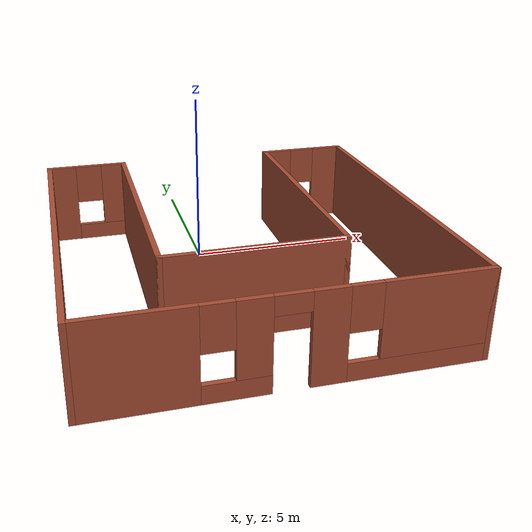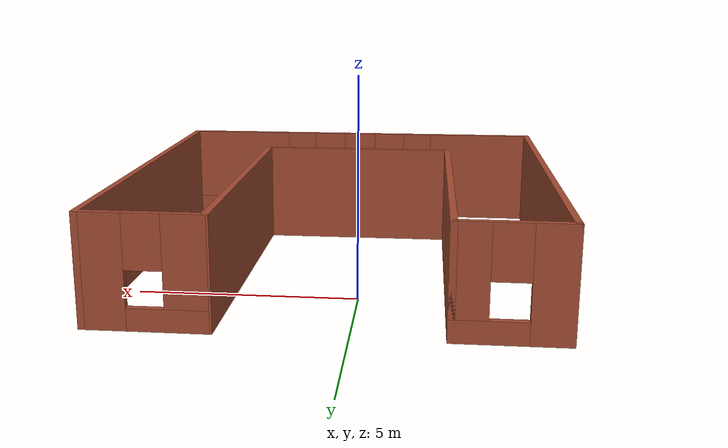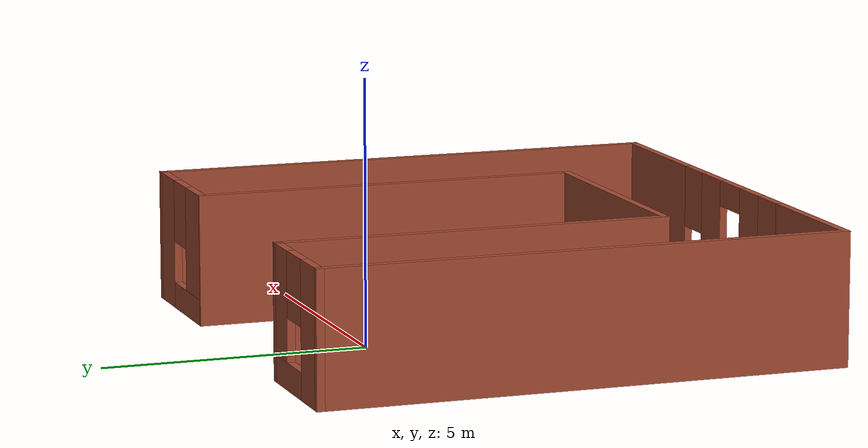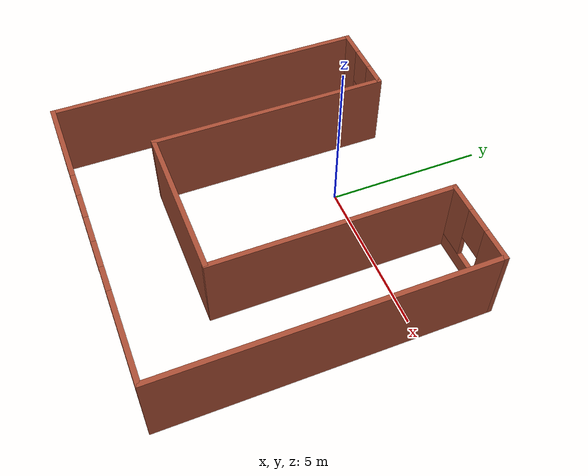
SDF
<?xml version='1.0'?>
<sdf version='1.6'>
  <model name='mybuilding'>
    <pose frame=''>0.559556 -2.63855 0 0 -0 0</pose>
    <link name='Wall_0'>
      <pose frame=''>-3.75 4.925 0 0 -0 0</pose>
      <visual name='Wall_0_Visual_0'>
        <pose frame=''>-0.804568 0 1.25 0 -0 0</pose>
        <geometry>
          <box>
            <size>0.890864 0.15 2.5</size>
          </box>
        </geometry>
        <material>
          <script>
            <uri>file://media/materials/scripts/gazebo.material</uri>
            <name>Gazebo/Bricks</name>
          </script>
          <ambient>1 1 1 1</ambient>
        </material>
        <meta>
          <layer>0</layer>
        </meta>
      </visual>
      <collision name='Wall_0_Collision_0'>
        <geometry>
          <box>
            <size>0.890864 0.15 2.5</size>
          </box>
        </geometry>
        <pose frame=''>-0.804568 0 1.25 0 -0 0</pose>
      </collision>
      <visual name='Wall_0_Visual_1'>
        <pose frame=''>0.445432 0 0.25 0 -0 0</pose>
        <geometry>
          <box>
            <size>1.60914 0.15 0.5</size>
          </box>
        </geometry>
        <material>
          <script>
            <uri>file://media/materials/scripts/gazebo.material</uri>
            <name>Gazebo/Bricks</name>
          </script>
          <ambient>1 1 1 1</ambient>
        </material>
        <meta>
          <layer>0</layer>
        </meta>
      </visual>
      <collision name='Wall_0_Collision_1'>
        <geometry>
          <box>
            <size>1.60914 0.15 0.5</size>
          </box>
        </geometry>
        <pose frame=''>0.445432 0 0.25 0 -0 0</pose>
      </collision>
      <visual name='Wall_0_Visual_2'>
        <pose frame=''>0.845432 0 1.5 0 -0 0</pose>
        <geometry>
          <box>
            <size>0.809136 0.15 2</size>
          </box>
        </geometry>
        <material>
          <script>
            <uri>file://media/materials/scripts/gazebo.material</uri>
            <name>Gazebo/Bricks</name>
          </script>
          <ambient>1 1 1 1</ambient>
        </material>
        <meta>
          <layer>0</layer>
        </meta>
      </visual>
      <collision name='Wall_0_Collision_2'>
        <geometry>
          <box>
            <size>0.809136 0.15 2</size>
          </box>
        </geometry>
        <pose frame=''>0.845432 0 1.5 0 -0 0</pose>
      </collision>
      <visual name='Wall_0_Visual_3'>
        <pose frame=''>0.040864 0 1.9 0 -0 0</pose>
        <geometry>
          <box>
            <size>0.8 0.15 1.2</size>
          </box>
        </geometry>
        <material>
          <script>
            <uri>file://media/materials/scripts/gazebo.material</uri>
            <name>Gazebo/Bricks</name>
          </script>
          <ambient>1 1 1 1</ambient>
        </material>
        <meta>
          <layer>0</layer>
        </meta>
      </visual>
      <collision name='Wall_0_Collision_3'>
        <geometry>
          <box>
            <size>0.8 0.15 1.2</size>
          </box>
        </geometry>
        <pose frame=''>0.040864 0 1.9 0 -0 0</pose>
      </collision>
    </link>
    <link name='Wall_10'>
      <pose frame=''>3.625 4.925 0 0 -0 3.14159</pose>
      <visual name='Wall_10_Visual_0'>
        <pose frame=''>-0.861434 0 1.25 0 -0 0</pose>
        <geometry>
          <box>
            <size>1.02713 0.15 2.5</size>
          </box>
        </geometry>
        <material>
          <script>
            <uri>file://media/materials/scripts/gazebo.material</uri>
            <name>Gazebo/Bricks</name>
          </script>
          <ambient>1 1 1 1</ambient>
        </material>
        <meta>
          <layer>0</layer>
        </meta>
      </visual>
      <collision name='Wall_10_Collision_0'>
        <geometry>
          <box>
            <size>1.02713 0.15 2.5</size>
          </box>
        </geometry>
        <pose frame=''>-0.861434 0 1.25 0 -0 0</pose>
      </collision>
      <visual name='Wall_10_Visual_1'>
        <pose frame=''>0.513566 0 0.25 0 -0 0</pose>
        <geometry>
          <box>
            <size>1.72287 0.15 0.5</size>
          </box>
        </geometry>
        <material>
          <script>
            <uri>file://media/materials/scripts/gazebo.material</uri>
            <name>Gazebo/Bricks</name>
          </script>
          <ambient>1 1 1 1</ambient>
        </material>
        <meta>
          <layer>0</layer>
        </meta>
      </visual>
      <collision name='Wall_10_Collision_1'>
        <geometry>
          <box>
            <size>1.72287 0.15 0.5</size>
          </box>
        </geometry>
        <pose frame=''>0.513566 0 0.25 0 -0 0</pose>
      </collision>
      <visual name='Wall_10_Visual_2'>
        <pose frame=''>0.913566 0 1.5 0 -0 0</pose>
        <geometry>
          <box>
            <size>0.922868 0.15 2</size>
          </box>
        </geometry>
        <material>
          <script>
            <uri>file://media/materials/scripts/gazebo.material</uri>
            <name>Gazebo/Bricks</name>
          </script>
          <ambient>1 1 1 1</ambient>
        </material>
        <meta>
          <layer>0</layer>
        </meta>
      </visual>
      <collision name='Wall_10_Collision_2'>
        <geometry>
          <box>
            <size>0.922868 0.15 2</size>
          </box>
        </geometry>
        <pose frame=''>0.913566 0 1.5 0 -0 0</pose>
      </collision>
      <visual name='Wall_10_Visual_3'>
        <pose frame=''>0.052132 0 1.9 0 -0 0</pose>
        <geometry>
          <box>
            <size>0.8 0.15 1.2</size>
          </box>
        </geometry>
        <material>
          <script>
            <uri>file://media/materials/scripts/gazebo.material</uri>
            <name>Gazebo/Bricks</name>
          </script>
          <ambient>1 1 1 1</ambient>
        </material>
        <meta>
          <layer>0</layer>
        </meta>
      </visual>
      <collision name='Wall_10_Collision_3'>
        <geometry>
          <box>
            <size>0.8 0.15 1.2</size>
          </box>
        </geometry>
        <pose frame=''>0.052132 0 1.9 0 -0 0</pose>
      </collision>
    </link>
    <link name='Wall_12'>
      <collision name='Wall_12_Collision'>
        <geometry>
          <box>
            <size>7.5 0.15 2.5</size>
          </box>
        </geometry>
        <pose frame=''>0 0 1.25 0 -0 0</pose>
      </collision>
      <visual name='Wall_12_Visual'>
        <pose frame=''>0 0 1.25 0 -0 0</pose>
        <geometry>
          <box>
            <size>7.5 0.15 2.5</size>
          </box>
        </geometry>
        <material>
          <script>
            <uri>file://media/materials/scripts/gazebo.material</uri>
            <name>Gazebo/Bricks</name>
          </script>
          <ambient>1 1 1 1</ambient>
        </material>
        <meta>
          <layer>0</layer>
        </meta>
      </visual>
      <pose frame=''>-2.575 1.25 0 0 0 -1.5708</pose>
    </link>
    <link name='Wall_14'>
      <collision name='Wall_14_Collision'>
        <geometry>
          <box>
            <size>5 0.15 2.5</size>
          </box>
        </geometry>
        <pose frame=''>0 0 1.25 0 -0 0</pose>
      </collision>
      <visual name='Wall_14_Visual'>
        <pose frame=''>0 0 1.25 0 -0 0</pose>
        <geometry>
          <box>
            <size>5 0.15 2.5</size>
          </box>
        </geometry>
        <material>
          <script>
            <uri>file://media/materials/scripts/gazebo.material</uri>
            <name>Gazebo/Bricks</name>
          </script>
          <ambient>1 1 1 1</ambient>
        </material>
        <meta>
          <layer>0</layer>
        </meta>
      </visual>
      <pose frame=''>-0.15 -2.425 0 0 -0 0</pose>
    </link>
    <link name='Wall_16'>
      <collision name='Wall_16_Collision'>
        <geometry>
          <box>
            <size>7.5 0.15 2.5</size>
          </box>
        </geometry>
        <pose frame=''>0 0 1.25 0 -0 0</pose>
      </collision>
      <visual name='Wall_16_Visual'>
        <pose frame=''>0 0 1.25 0 -0 0</pose>
        <geometry>
          <box>
            <size>7.5 0.15 2.5</size>
          </box>
        </geometry>
        <material>
          <script>
            <uri>file://media/materials/scripts/gazebo.material</uri>
            <name>Gazebo/Bricks</name>
          </script>
          <ambient>1 1 1 1</ambient>
        </material>
        <meta>
          <layer>0</layer>
        </meta>
      </visual>
      <pose frame=''>2.275 1.25 0 0 -0 1.5708</pose>
    </link>
    <link name='Wall_4'>
      <collision name='Wall_4_Collision'>
        <geometry>
          <box>
            <size>10 0.15 2.5</size>
          </box>
        </geometry>
        <pose frame=''>0 0 1.25 0 -0 0</pose>
      </collision>
      <visual name='Wall_4_Visual'>
        <pose frame=''>0 0 1.25 0 -0 0</pose>
        <geometry>
          <box>
            <size>10 0.15 2.5</size>
          </box>
        </geometry>
        <material>
          <script>
            <uri>file://media/materials/scripts/gazebo.material</uri>
            <name>Gazebo/Bricks</name>
          </script>
          <ambient>1 1 1 1</ambient>
        </material>
        <meta>
          <layer>0</layer>
        </meta>
      </visual>
      <pose frame=''>-4.925 0 0 0 0 -1.5708</pose>
    </link>
    <link name='Wall_6'>
      <pose frame=''>0 -4.925 0 0 -0 0</pose>
      <visual name='Wall_6_Visual_0'>
        <pose frame=''>-3.56341 0 1.25 0 -0 0</pose>
        <geometry>
          <box>
            <size>2.87319 0.15 2.5</size>
          </box>
        </geometry>
        <material>
          <script>
            <uri>file://media/materials/scripts/gazebo.material</uri>
            <name>Gazebo/Bricks</name>
          </script>
          <ambient>1 1 1 1</ambient>
        </material>
        <meta>
          <layer>0</layer>
        </meta>
      </visual>
      <collision name='Wall_6_Collision_0'>
        <geometry>
          <box>
            <size>2.87319 0.15 2.5</size>
          </box>
        </geometry>
        <pose frame=''>-3.56341 0 1.25 0 -0 0</pose>
      </collision>
      <visual name='Wall_6_Visual_1'>
        <pose frame=''>0.867117 0 1.25 0 -0 0</pose>
        <geometry>
          <box>
            <size>0.88959 0.15 2.5</size>
          </box>
        </geometry>
        <material>
          <script>
            <uri>file://media/materials/scripts/gazebo.material</uri>
            <name>Gazebo/Bricks</name>
          </script>
          <ambient>1 1 1 1</ambient>
        </material>
        <meta>
          <layer>0</layer>
        </meta>
      </visual>
      <collision name='Wall_6_Collision_1'>
        <geometry>
          <box>
            <size>0.88959 0.15 2.5</size>
          </box>
        </geometry>
        <pose frame=''>0.867117 0 1.25 0 -0 0</pose>
      </collision>
      <visual name='Wall_6_Visual_2'>
        <pose frame=''>-1.30225 0 0.25 0 -0 0</pose>
        <geometry>
          <box>
            <size>1.64913 0.15 0.5</size>
          </box>
        </geometry>
        <material>
          <script>
            <uri>file://media/materials/scripts/gazebo.material</uri>
            <name>Gazebo/Bricks</name>
          </script>
          <ambient>1 1 1 1</ambient>
        </material>
        <meta>
          <layer>0</layer>
        </meta>
      </visual>
      <collision name='Wall_6_Collision_2'>
        <geometry>
          <box>
            <size>1.64913 0.15 0.5</size>
          </box>
        </geometry>
        <pose frame=''>-1.30225 0 0.25 0 -0 0</pose>
      </collision>
      <visual name='Wall_6_Visual_3'>
        <pose frame=''>3.15596 0 0.25 0 -0 0</pose>
        <geometry>
          <box>
            <size>3.68809 0.15 0.5</size>
          </box>
        </geometry>
        <material>
          <script>
            <uri>file://media/materials/scripts/gazebo.material</uri>
            <name>Gazebo/Bricks</name>
          </script>
          <ambient>1 1 1 1</ambient>
        </material>
        <meta>
          <layer>0</layer>
        </meta>
      </visual>
      <collision name='Wall_6_Collision_3'>
        <geometry>
          <box>
            <size>3.68809 0.15 0.5</size>
          </box>
        </geometry>
        <pose frame=''>3.15596 0 0.25 0 -0 0</pose>
      </collision>
      <visual name='Wall_6_Visual_4'>
        <pose frame=''>-0.902245 0 1.5 0 -0 0</pose>
        <geometry>
          <box>
            <size>0.849134 0.15 2</size>
          </box>
        </geometry>
        <material>
          <script>
            <uri>file://media/materials/scripts/gazebo.material</uri>
            <name>Gazebo/Bricks</name>
          </script>
          <ambient>1 1 1 1</ambient>
        </material>
        <meta>
          <layer>0</layer>
        </meta>
      </visual>
      <collision name='Wall_6_Collision_4'>
        <geometry>
          <box>
            <size>0.849134 0.15 2</size>
          </box>
        </geometry>
        <pose frame=''>-0.902245 0 1.5 0 -0 0</pose>
      </collision>
      <visual name='Wall_6_Visual_5'>
        <pose frame=''>-0.902245 0 1.5 0 -0 0</pose>
        <geometry>
          <box>
            <size>0.849134 0.15 2</size>
          </box>
        </geometry>
        <material>
          <script>
            <uri>file://media/materials/scripts/gazebo.material</uri>
            <name>Gazebo/Bricks</name>
          </script>
          <ambient>1 1 1 1</ambient>
        </material>
        <meta>
          <layer>0</layer>
        </meta>
      </visual>
      <collision name='Wall_6_Collision_5'>
        <geometry>
          <box>
            <size>0.849134 0.15 2</size>
          </box>
        </geometry>
        <pose frame=''>-0.902245 0 1.5 0 -0 0</pose>
      </collision>
      <visual name='Wall_6_Visual_6'>
        <pose frame=''>3.55596 0 1.5 0 -0 0</pose>
        <geometry>
          <box>
            <size>2.88809 0.15 2</size>
          </box>
        </geometry>
        <material>
          <script>
            <uri>file://media/materials/scripts/gazebo.material</uri>
            <name>Gazebo/Bricks</name>
          </script>
          <ambient>1 1 1 1</ambient>
        </material>
        <meta>
          <layer>0</layer>
        </meta>
      </visual>
      <collision name='Wall_6_Collision_6'>
        <geometry>
          <box>
            <size>2.88809 0.15 2</size>
          </box>
        </geometry>
        <pose frame=''>3.55596 0 1.5 0 -0 0</pose>
      </collision>
      <visual name='Wall_6_Visual_7'>
        <pose frame=''>-1.72681 0 1.9 0 -0 0</pose>
        <geometry>
          <box>
            <size>0.8 0.15 1.2</size>
          </box>
        </geometry>
        <material>
          <script>
            <uri>file://media/materials/scripts/gazebo.material</uri>
            <name>Gazebo/Bricks</name>
          </script>
          <ambient>1 1 1 1</ambient>
        </material>
        <meta>
          <layer>0</layer>
        </meta>
      </visual>
      <collision name='Wall_6_Collision_7'>
        <geometry>
          <box>
            <size>0.8 0.15 1.2</size>
          </box>
        </geometry>
        <pose frame=''>-1.72681 0 1.9 0 -0 0</pose>
      </collision>
      <visual name='Wall_6_Visual_8'>
        <pose frame=''>1.71191 0 1.9 0 -0 0</pose>
        <geometry>
          <box>
            <size>0.8 0.15 1.2</size>
          </box>
        </geometry>
        <material>
          <script>
            <uri>file://media/materials/scripts/gazebo.material</uri>
            <name>Gazebo/Bricks</name>
          </script>
          <ambient>1 1 1 1</ambient>
        </material>
        <meta>
          <layer>0</layer>
        </meta>
      </visual>
      <collision name='Wall_6_Collision_8'>
        <geometry>
          <box>
            <size>0.8 0.15 1.2</size>
          </box>
        </geometry>
        <pose frame=''>1.71191 0 1.9 0 -0 0</pose>
      </collision>
      <visual name='Wall_6_Visual_9'>
        <pose frame=''>-0.027678 0 2.25 0 -0 0</pose>
        <geometry>
          <box>
            <size>0.9 0.15 0.5</size>
          </box>
        </geometry>
        <material>
          <script>
            <uri>file://media/materials/scripts/gazebo.material</uri>
            <name>Gazebo/Bricks</name>
          </script>
          <ambient>1 1 1 1</ambient>
        </material>
        <meta>
          <layer>0</layer>
        </meta>
      </visual>
      <collision name='Wall_6_Collision_9'>
        <geometry>
          <box>
            <size>0.9 0.15 0.5</size>
          </box>
        </geometry>
        <pose frame=''>-0.027678 0 2.25 0 -0 0</pose>
      </collision>
      <visual name='Wall_6_Visual_10'>
        <pose frame=''>-0.027678 0 2.25 0 -0 0</pose>
        <geometry>
          <box>
            <size>0.9 0.15 0.5</size>
          </box>
        </geometry>
        <material>
          <script>
            <uri>file://media/materials/scripts/gazebo.material</uri>
            <name>Gazebo/Bricks</name>
          </script>
          <ambient>1 1 1 1</ambient>
        </material>
        <meta>
          <layer>0</layer>
        </meta>
      </visual>
      <collision name='Wall_6_Collision_10'>
        <geometry>
          <box>
            <size>0.9 0.15 0.5</size>
          </box>
        </geometry>
        <pose frame=''>-0.027678 0 2.25 0 -0 0</pose>
      </collision>
    </link>
    <link name='Wall_8'>
      <collision name='Wall_8_Collision'>
        <geometry>
          <box>
            <size>10 0.15 2.5</size>
          </box>
        </geometry>
        <pose frame=''>0 0 1.25 0 -0 0</pose>
      </collision>
      <visual name='Wall_8_Visual'>
        <pose frame=''>0 0 1.25 0 -0 0</pose>
        <geometry>
          <box>
            <size>10 0.15 2.5</size>
          </box>
        </geometry>
        <material>
          <script>
            <uri>file://media/materials/scripts/gazebo.material</uri>
            <name>Gazebo/Bricks</name>
          </script>
          <ambient>1 1 1 1</ambient>
        </material>
        <meta>
          <layer>0</layer>
        </meta>
      </visual>
      <pose frame=''>4.925 0 0 0 -0 1.5708</pose>
    </link>
    <static>1</static>
  </model>
</sdf>
